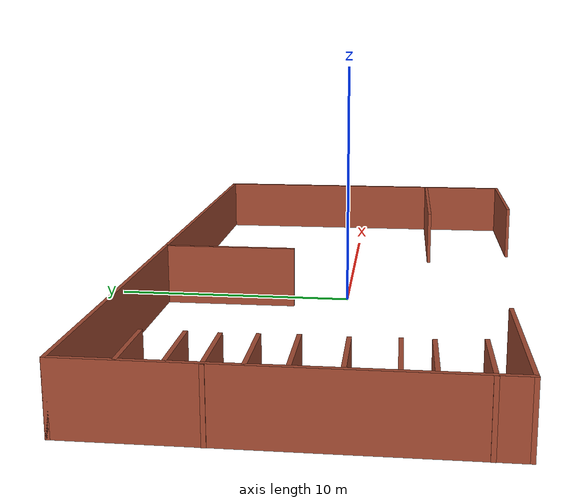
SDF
<?xml version='1.0'?>
<sdf version='1.7'>
  <model name='Untitled'>
    <link name='Wall_17'>
      <pose>-13.7985 0.875 0 0 -0 1.5708</pose>
      <self_collide>0</self_collide>
      <enable_wind>0</enable_wind>
      <kinematic>0</kinematic>
      <visual name='Wall_17_Visual'>
        <pose>0 0 1.25 0 -0 0</pose>
        <geometry>
          <box>
            <size>13.75 0.15 2.5</size>
          </box>
        </geometry>
        <material>
          <script>
            <uri>file://media/materials/scripts/gazebo.material</uri>
            <name>Gazebo/Bricks</name>
          </script>
          <ambient>1 1 1 1</ambient>
          <shader type='pixel'/>
        </material>
        <meta>
          <layer>0</layer>
        </meta>
        <transparency>0</transparency>
        <cast_shadows>1</cast_shadows>
      </visual>
      <collision name='Wall_17_Collision'>
        <laser_retro>0</laser_retro>
        <max_contacts>10</max_contacts>
        <pose>0 0 1.25 0 -0 0</pose>
        <geometry>
          <box>
            <size>13.75 0.15 2.5</size>
          </box>
        </geometry>
        <surface>
          <friction>
            <ode>
              <mu>1</mu>
              <mu2>1</mu2>
              <fdir1>0 0 0</fdir1>
              <slip1>0</slip1>
              <slip2>0</slip2>
            </ode>
            <torsional>
              <coefficient>1</coefficient>
              <patch_radius>0</patch_radius>
              <surface_radius>0</surface_radius>
              <use_patch_radius>1</use_patch_radius>
              <ode>
                <slip>0</slip>
              </ode>
            </torsional>
          </friction>
          <bounce>
            <restitution_coefficient>0</restitution_coefficient>
            <threshold>1e+06</threshold>
          </bounce>
          <contact>
            <collide_without_contact>0</collide_without_contact>
            <collide_without_contact_bitmask>1</collide_without_contact_bitmask>
            <collide_bitmask>1</collide_bitmask>
            <ode>
              <soft_cfm>0</soft_cfm>
              <soft_erp>0.2</soft_erp>
              <kp>1e+13</kp>
              <kd>1</kd>
              <max_vel>0.01</max_vel>
              <min_depth>0</min_depth>
            </ode>
            <bullet>
              <split_impulse>1</split_impulse>
              <split_impulse_penetration_threshold>-0.01</split_impulse_penetration_threshold>
              <soft_cfm>0</soft_cfm>
              <soft_erp>0.2</soft_erp>
              <kp>1e+13</kp>
              <kd>1</kd>
            </bullet>
          </contact>
        </surface>
      </collision>
    </link>
    <link name='Wall_18'>
      <pose>0.001474 7.675 0 0 -0 0</pose>
      <self_collide>0</self_collide>
      <enable_wind>0</enable_wind>
      <kinematic>0</kinematic>
      <visual name='Wall_18_Visual'>
        <pose>0 0 1.25 0 -0 0</pose>
        <geometry>
          <box>
            <size>27.75 0.15 2.5</size>
          </box>
        </geometry>
        <material>
          <script>
            <uri>file://media/materials/scripts/gazebo.material</uri>
            <name>Gazebo/Bricks</name>
          </script>
          <ambient>1 1 1 1</ambient>
          <shader type='pixel'/>
        </material>
        <meta>
          <layer>0</layer>
        </meta>
        <transparency>0</transparency>
        <cast_shadows>1</cast_shadows>
      </visual>
      <collision name='Wall_18_Collision'>
        <laser_retro>0</laser_retro>
        <max_contacts>10</max_contacts>
        <pose>0 0 1.25 0 -0 0</pose>
        <geometry>
          <box>
            <size>27.75 0.15 2.5</size>
          </box>
        </geometry>
        <surface>
          <friction>
            <ode>
              <mu>1</mu>
              <mu2>1</mu2>
              <fdir1>0 0 0</fdir1>
              <slip1>0</slip1>
              <slip2>0</slip2>
            </ode>
            <torsional>
              <coefficient>1</coefficient>
              <patch_radius>0</patch_radius>
              <surface_radius>0</surface_radius>
              <use_patch_radius>1</use_patch_radius>
              <ode>
                <slip>0</slip>
              </ode>
            </torsional>
          </friction>
          <bounce>
            <restitution_coefficient>0</restitution_coefficient>
            <threshold>1e+06</threshold>
          </bounce>
          <contact>
            <collide_without_contact>0</collide_without_contact>
            <collide_without_contact_bitmask>1</collide_without_contact_bitmask>
            <collide_bitmask>1</collide_bitmask>
            <ode>
              <soft_cfm>0</soft_cfm>
              <soft_erp>0.2</soft_erp>
              <kp>1e+13</kp>
              <kd>1</kd>
              <max_vel>0.01</max_vel>
              <min_depth>0</min_depth>
            </ode>
            <bullet>
              <split_impulse>1</split_impulse>
              <split_impulse_penetration_threshold>-0.01</split_impulse_penetration_threshold>
              <soft_cfm>0</soft_cfm>
              <soft_erp>0.2</soft_erp>
              <kp>1e+13</kp>
              <kd>1</kd>
            </bullet>
          </contact>
        </surface>
      </collision>
    </link>
    <link name='Wall_19'>
      <pose>13.8015 0 0 0 0 -1.5708</pose>
      <self_collide>0</self_collide>
      <enable_wind>0</enable_wind>
      <kinematic>0</kinematic>
      <visual name='Wall_19_Visual'>
        <pose>0 0 1.25 0 -0 0</pose>
        <geometry>
          <box>
            <size>15.5 0.15 2.5</size>
          </box>
        </geometry>
        <material>
          <script>
            <uri>file://media/materials/scripts/gazebo.material</uri>
            <name>Gazebo/Bricks</name>
          </script>
          <ambient>1 1 1 1</ambient>
          <shader type='pixel'/>
        </material>
        <meta>
          <layer>0</layer>
        </meta>
        <transparency>0</transparency>
        <cast_shadows>1</cast_shadows>
      </visual>
      <collision name='Wall_19_Collision'>
        <laser_retro>0</laser_retro>
        <max_contacts>10</max_contacts>
        <pose>0 0 1.25 0 -0 0</pose>
        <geometry>
          <box>
            <size>15.5 0.15 2.5</size>
          </box>
        </geometry>
        <surface>
          <friction>
            <ode>
              <mu>1</mu>
              <mu2>1</mu2>
              <fdir1>0 0 0</fdir1>
              <slip1>0</slip1>
              <slip2>0</slip2>
            </ode>
            <torsional>
              <coefficient>1</coefficient>
              <patch_radius>0</patch_radius>
              <surface_radius>0</surface_radius>
              <use_patch_radius>1</use_patch_radius>
              <ode>
                <slip>0</slip>
              </ode>
            </torsional>
          </friction>
          <bounce>
            <restitution_coefficient>0</restitution_coefficient>
            <threshold>1e+06</threshold>
          </bounce>
          <contact>
            <collide_without_contact>0</collide_without_contact>
            <collide_without_contact_bitmask>1</collide_without_contact_bitmask>
            <collide_bitmask>1</collide_bitmask>
            <ode>
              <soft_cfm>0</soft_cfm>
              <soft_erp>0.2</soft_erp>
              <kp>1e+13</kp>
              <kd>1</kd>
              <max_vel>0.01</max_vel>
              <min_depth>0</min_depth>
            </ode>
            <bullet>
              <split_impulse>1</split_impulse>
              <split_impulse_penetration_threshold>-0.01</split_impulse_penetration_threshold>
              <soft_cfm>0</soft_cfm>
              <soft_erp>0.2</soft_erp>
              <kp>1e+13</kp>
              <kd>1</kd>
            </bullet>
          </contact>
        </surface>
      </collision>
    </link>
    <link name='Wall_20'>
      <pose>10.8765 -7.675 0 0 -0 3.14159</pose>
      <self_collide>0</self_collide>
      <enable_wind>0</enable_wind>
      <kinematic>0</kinematic>
      <visual name='Wall_20_Visual'>
        <pose>0 0 1.25 0 -0 0</pose>
        <geometry>
          <box>
            <size>6 0.15 2.5</size>
          </box>
        </geometry>
        <material>
          <script>
            <uri>file://media/materials/scripts/gazebo.material</uri>
            <name>Gazebo/Bricks</name>
          </script>
          <ambient>1 1 1 1</ambient>
          <shader type='pixel'/>
        </material>
        <meta>
          <layer>0</layer>
        </meta>
        <transparency>0</transparency>
        <cast_shadows>1</cast_shadows>
      </visual>
      <collision name='Wall_20_Collision'>
        <laser_retro>0</laser_retro>
        <max_contacts>10</max_contacts>
        <pose>0 0 1.25 0 -0 0</pose>
        <geometry>
          <box>
            <size>6 0.15 2.5</size>
          </box>
        </geometry>
        <surface>
          <friction>
            <ode>
              <mu>1</mu>
              <mu2>1</mu2>
              <fdir1>0 0 0</fdir1>
              <slip1>0</slip1>
              <slip2>0</slip2>
            </ode>
            <torsional>
              <coefficient>1</coefficient>
              <patch_radius>0</patch_radius>
              <surface_radius>0</surface_radius>
              <use_patch_radius>1</use_patch_radius>
              <ode>
                <slip>0</slip>
              </ode>
            </torsional>
          </friction>
          <bounce>
            <restitution_coefficient>0</restitution_coefficient>
            <threshold>1e+06</threshold>
          </bounce>
          <contact>
            <collide_without_contact>0</collide_without_contact>
            <collide_without_contact_bitmask>1</collide_without_contact_bitmask>
            <collide_bitmask>1</collide_bitmask>
            <ode>
              <soft_cfm>0</soft_cfm>
              <soft_erp>0.2</soft_erp>
              <kp>1e+13</kp>
              <kd>1</kd>
              <max_vel>0.01</max_vel>
              <min_depth>0</min_depth>
            </ode>
            <bullet>
              <split_impulse>1</split_impulse>
              <split_impulse_penetration_threshold>-0.01</split_impulse_penetration_threshold>
              <soft_cfm>0</soft_cfm>
              <soft_erp>0.2</soft_erp>
              <kp>1e+13</kp>
              <kd>1</kd>
            </bullet>
          </contact>
        </surface>
      </collision>
    </link>
    <link name='Wall_21'>
      <pose>-10.9985 -5.925 0 0 -0 0</pose>
      <self_collide>0</self_collide>
      <enable_wind>0</enable_wind>
      <kinematic>0</kinematic>
      <visual name='Wall_21_Visual'>
        <pose>0 0 1.25 0 -0 0</pose>
        <geometry>
          <box>
            <size>5.75 0.15 2.5</size>
          </box>
        </geometry>
        <material>
          <script>
            <uri>file://media/materials/scripts/gazebo.material</uri>
            <name>Gazebo/Bricks</name>
          </script>
          <ambient>1 1 1 1</ambient>
          <shader type='pixel'/>
        </material>
        <meta>
          <layer>0</layer>
        </meta>
        <transparency>0</transparency>
        <cast_shadows>1</cast_shadows>
      </visual>
      <collision name='Wall_21_Collision'>
        <laser_retro>0</laser_retro>
        <max_contacts>10</max_contacts>
        <pose>0 0 1.25 0 -0 0</pose>
        <geometry>
          <box>
            <size>5.75 0.15 2.5</size>
          </box>
        </geometry>
        <surface>
          <friction>
            <ode>
              <mu>1</mu>
              <mu2>1</mu2>
              <fdir1>0 0 0</fdir1>
              <slip1>0</slip1>
              <slip2>0</slip2>
            </ode>
            <torsional>
              <coefficient>1</coefficient>
              <patch_radius>0</patch_radius>
              <surface_radius>0</surface_radius>
              <use_patch_radius>1</use_patch_radius>
              <ode>
                <slip>0</slip>
              </ode>
            </torsional>
          </friction>
          <bounce>
            <restitution_coefficient>0</restitution_coefficient>
            <threshold>1e+06</threshold>
          </bounce>
          <contact>
            <collide_without_contact>0</collide_without_contact>
            <collide_without_contact_bitmask>1</collide_without_contact_bitmask>
            <collide_bitmask>1</collide_bitmask>
            <ode>
              <soft_cfm>0</soft_cfm>
              <soft_erp>0.2</soft_erp>
              <kp>1e+13</kp>
              <kd>1</kd>
              <max_vel>0.01</max_vel>
              <min_depth>0</min_depth>
            </ode>
            <bullet>
              <split_impulse>1</split_impulse>
              <split_impulse_penetration_threshold>-0.01</split_impulse_penetration_threshold>
              <soft_cfm>0</soft_cfm>
              <soft_erp>0.2</soft_erp>
              <kp>1e+13</kp>
              <kd>1</kd>
            </bullet>
          </contact>
        </surface>
      </collision>
    </link>
    <link name='Wall_23'>
      <pose>-12.6229 5.63002 0 0 -0 0</pose>
      <self_collide>0</self_collide>
      <enable_wind>0</enable_wind>
      <kinematic>0</kinematic>
      <visual name='Wall_23_Visual'>
        <pose>0 0 1.25 0 -0 0</pose>
        <geometry>
          <box>
            <size>2.5 0.15 2.5</size>
          </box>
        </geometry>
        <material>
          <script>
            <uri>file://media/materials/scripts/gazebo.material</uri>
            <name>Gazebo/Bricks</name>
          </script>
          <ambient>1 1 1 1</ambient>
          <shader type='pixel'/>
        </material>
        <meta>
          <layer>0</layer>
        </meta>
        <transparency>0</transparency>
        <cast_shadows>1</cast_shadows>
      </visual>
      <collision name='Wall_23_Collision'>
        <laser_retro>0</laser_retro>
        <max_contacts>10</max_contacts>
        <pose>0 0 1.25 0 -0 0</pose>
        <geometry>
          <box>
            <size>2.5 0.15 2.5</size>
          </box>
        </geometry>
        <surface>
          <friction>
            <ode>
              <mu>1</mu>
              <mu2>1</mu2>
              <fdir1>0 0 0</fdir1>
              <slip1>0</slip1>
              <slip2>0</slip2>
            </ode>
            <torsional>
              <coefficient>1</coefficient>
              <patch_radius>0</patch_radius>
              <surface_radius>0</surface_radius>
              <use_patch_radius>1</use_patch_radius>
              <ode>
                <slip>0</slip>
              </ode>
            </torsional>
          </friction>
          <bounce>
            <restitution_coefficient>0</restitution_coefficient>
            <threshold>1e+06</threshold>
          </bounce>
          <contact>
            <collide_without_contact>0</collide_without_contact>
            <collide_without_contact_bitmask>1</collide_without_contact_bitmask>
            <collide_bitmask>1</collide_bitmask>
            <ode>
              <soft_cfm>0</soft_cfm>
              <soft_erp>0.2</soft_erp>
              <kp>1e+13</kp>
              <kd>1</kd>
              <max_vel>0.01</max_vel>
              <min_depth>0</min_depth>
            </ode>
            <bullet>
              <split_impulse>1</split_impulse>
              <split_impulse_penetration_threshold>-0.01</split_impulse_penetration_threshold>
              <soft_cfm>0</soft_cfm>
              <soft_erp>0.2</soft_erp>
              <kp>1e+13</kp>
              <kd>1</kd>
            </bullet>
          </contact>
        </surface>
      </collision>
    </link>
    <link name='Wall_25'>
      <pose>-12.603 4.22075 0 0 -0 0</pose>
      <self_collide>0</self_collide>
      <enable_wind>0</enable_wind>
      <kinematic>0</kinematic>
      <visual name='Wall_25_Visual'>
        <pose>0 0 1.25 0 -0 0</pose>
        <geometry>
          <box>
            <size>2.5 0.15 2.5</size>
          </box>
        </geometry>
        <material>
          <script>
            <uri>file://media/materials/scripts/gazebo.material</uri>
            <name>Gazebo/Bricks</name>
          </script>
          <ambient>1 1 1 1</ambient>
          <shader type='pixel'/>
        </material>
        <meta>
          <layer>0</layer>
        </meta>
        <transparency>0</transparency>
        <cast_shadows>1</cast_shadows>
      </visual>
      <collision name='Wall_25_Collision'>
        <laser_retro>0</laser_retro>
        <max_contacts>10</max_contacts>
        <pose>0 0 1.25 0 -0 0</pose>
        <geometry>
          <box>
            <size>2.5 0.15 2.5</size>
          </box>
        </geometry>
        <surface>
          <friction>
            <ode>
              <mu>1</mu>
              <mu2>1</mu2>
              <fdir1>0 0 0</fdir1>
              <slip1>0</slip1>
              <slip2>0</slip2>
            </ode>
            <torsional>
              <coefficient>1</coefficient>
              <patch_radius>0</patch_radius>
              <surface_radius>0</surface_radius>
              <use_patch_radius>1</use_patch_radius>
              <ode>
                <slip>0</slip>
              </ode>
            </torsional>
          </friction>
          <bounce>
            <restitution_coefficient>0</restitution_coefficient>
            <threshold>1e+06</threshold>
          </bounce>
          <contact>
            <collide_without_contact>0</collide_without_contact>
            <collide_without_contact_bitmask>1</collide_without_contact_bitmask>
            <collide_bitmask>1</collide_bitmask>
            <ode>
              <soft_cfm>0</soft_cfm>
              <soft_erp>0.2</soft_erp>
              <kp>1e+13</kp>
              <kd>1</kd>
              <max_vel>0.01</max_vel>
              <min_depth>0</min_depth>
            </ode>
            <bullet>
              <split_impulse>1</split_impulse>
              <split_impulse_penetration_threshold>-0.01</split_impulse_penetration_threshold>
              <soft_cfm>0</soft_cfm>
              <soft_erp>0.2</soft_erp>
              <kp>1e+13</kp>
              <kd>1</kd>
            </bullet>
          </contact>
        </surface>
      </collision>
    </link>
    <link name='Wall_27'>
      <pose>-12.603 1.95799 0 0 -0 0</pose>
      <self_collide>0</self_collide>
      <enable_wind>0</enable_wind>
      <kinematic>0</kinematic>
      <visual name='Wall_27_Visual'>
        <pose>0 0 1.25 0 -0 0</pose>
        <geometry>
          <box>
            <size>2.5 0.15 2.5</size>
          </box>
        </geometry>
        <material>
          <script>
            <uri>file://media/materials/scripts/gazebo.material</uri>
            <name>Gazebo/Bricks</name>
          </script>
          <ambient>1 1 1 1</ambient>
          <shader type='pixel'/>
        </material>
        <meta>
          <layer>0</layer>
        </meta>
        <transparency>0</transparency>
        <cast_shadows>1</cast_shadows>
      </visual>
      <collision name='Wall_27_Collision'>
        <laser_retro>0</laser_retro>
        <max_contacts>10</max_contacts>
        <pose>0 0 1.25 0 -0 0</pose>
        <geometry>
          <box>
            <size>2.5 0.15 2.5</size>
          </box>
        </geometry>
        <surface>
          <friction>
            <ode>
              <mu>1</mu>
              <mu2>1</mu2>
              <fdir1>0 0 0</fdir1>
              <slip1>0</slip1>
              <slip2>0</slip2>
            </ode>
            <torsional>
              <coefficient>1</coefficient>
              <patch_radius>0</patch_radius>
              <surface_radius>0</surface_radius>
              <use_patch_radius>1</use_patch_radius>
              <ode>
                <slip>0</slip>
              </ode>
            </torsional>
          </friction>
          <bounce>
            <restitution_coefficient>0</restitution_coefficient>
            <threshold>1e+06</threshold>
          </bounce>
          <contact>
            <collide_without_contact>0</collide_without_contact>
            <collide_without_contact_bitmask>1</collide_without_contact_bitmask>
            <collide_bitmask>1</collide_bitmask>
            <ode>
              <soft_cfm>0</soft_cfm>
              <soft_erp>0.2</soft_erp>
              <kp>1e+13</kp>
              <kd>1</kd>
              <max_vel>0.01</max_vel>
              <min_depth>0</min_depth>
            </ode>
            <bullet>
              <split_impulse>1</split_impulse>
              <split_impulse_penetration_threshold>-0.01</split_impulse_penetration_threshold>
              <soft_cfm>0</soft_cfm>
              <soft_erp>0.2</soft_erp>
              <kp>1e+13</kp>
              <kd>1</kd>
            </bullet>
          </contact>
        </surface>
      </collision>
    </link>
    <link name='Wall_29'>
      <pose>-12.6427 3.12907 0 0 -0 0</pose>
      <self_collide>0</self_collide>
      <enable_wind>0</enable_wind>
      <kinematic>0</kinematic>
      <visual name='Wall_29_Visual'>
        <pose>0 0 1.25 0 -0 0</pose>
        <geometry>
          <box>
            <size>2.5 0.15 2.5</size>
          </box>
        </geometry>
        <material>
          <script>
            <uri>file://media/materials/scripts/gazebo.material</uri>
            <name>Gazebo/Bricks</name>
          </script>
          <ambient>1 1 1 1</ambient>
          <shader type='pixel'/>
        </material>
        <meta>
          <layer>0</layer>
        </meta>
        <transparency>0</transparency>
        <cast_shadows>1</cast_shadows>
      </visual>
      <collision name='Wall_29_Collision'>
        <laser_retro>0</laser_retro>
        <max_contacts>10</max_contacts>
        <pose>0 0 1.25 0 -0 0</pose>
        <geometry>
          <box>
            <size>2.5 0.15 2.5</size>
          </box>
        </geometry>
        <surface>
          <friction>
            <ode>
              <mu>1</mu>
              <mu2>1</mu2>
              <fdir1>0 0 0</fdir1>
              <slip1>0</slip1>
              <slip2>0</slip2>
            </ode>
            <torsional>
              <coefficient>1</coefficient>
              <patch_radius>0</patch_radius>
              <surface_radius>0</surface_radius>
              <use_patch_radius>1</use_patch_radius>
              <ode>
                <slip>0</slip>
              </ode>
            </torsional>
          </friction>
          <bounce>
            <restitution_coefficient>0</restitution_coefficient>
            <threshold>1e+06</threshold>
          </bounce>
          <contact>
            <collide_without_contact>0</collide_without_contact>
            <collide_without_contact_bitmask>1</collide_without_contact_bitmask>
            <collide_bitmask>1</collide_bitmask>
            <ode>
              <soft_cfm>0</soft_cfm>
              <soft_erp>0.2</soft_erp>
              <kp>1e+13</kp>
              <kd>1</kd>
              <max_vel>0.01</max_vel>
              <min_depth>0</min_depth>
            </ode>
            <bullet>
              <split_impulse>1</split_impulse>
              <split_impulse_penetration_threshold>-0.01</split_impulse_penetration_threshold>
              <soft_cfm>0</soft_cfm>
              <soft_erp>0.2</soft_erp>
              <kp>1e+13</kp>
              <kd>1</kd>
            </bullet>
          </contact>
        </surface>
      </collision>
    </link>
    <link name='Wall_31'>
      <pose>-12.603 -0.781138 0 0 -0 0</pose>
      <self_collide>0</self_collide>
      <enable_wind>0</enable_wind>
      <kinematic>0</kinematic>
      <visual name='Wall_31_Visual'>
        <pose>0 0 1.25 0 -0 0</pose>
        <geometry>
          <box>
            <size>2.5 0.15 2.5</size>
          </box>
        </geometry>
        <material>
          <script>
            <uri>file://media/materials/scripts/gazebo.material</uri>
            <name>Gazebo/Bricks</name>
          </script>
          <ambient>1 1 1 1</ambient>
          <shader type='pixel'/>
        </material>
        <meta>
          <layer>0</layer>
        </meta>
        <transparency>0</transparency>
        <cast_shadows>1</cast_shadows>
      </visual>
      <collision name='Wall_31_Collision'>
        <laser_retro>0</laser_retro>
        <max_contacts>10</max_contacts>
        <pose>0 0 1.25 0 -0 0</pose>
        <geometry>
          <box>
            <size>2.5 0.15 2.5</size>
          </box>
        </geometry>
        <surface>
          <friction>
            <ode>
              <mu>1</mu>
              <mu2>1</mu2>
              <fdir1>0 0 0</fdir1>
              <slip1>0</slip1>
              <slip2>0</slip2>
            </ode>
            <torsional>
              <coefficient>1</coefficient>
              <patch_radius>0</patch_radius>
              <surface_radius>0</surface_radius>
              <use_patch_radius>1</use_patch_radius>
              <ode>
                <slip>0</slip>
              </ode>
            </torsional>
          </friction>
          <bounce>
            <restitution_coefficient>0</restitution_coefficient>
            <threshold>1e+06</threshold>
          </bounce>
          <contact>
            <collide_without_contact>0</collide_without_contact>
            <collide_without_contact_bitmask>1</collide_without_contact_bitmask>
            <collide_bitmask>1</collide_bitmask>
            <ode>
              <soft_cfm>0</soft_cfm>
              <soft_erp>0.2</soft_erp>
              <kp>1e+13</kp>
              <kd>1</kd>
              <max_vel>0.01</max_vel>
              <min_depth>0</min_depth>
            </ode>
            <bullet>
              <split_impulse>1</split_impulse>
              <split_impulse_penetration_threshold>-0.01</split_impulse_penetration_threshold>
              <soft_cfm>0</soft_cfm>
              <soft_erp>0.2</soft_erp>
              <kp>1e+13</kp>
              <kd>1</kd>
            </bullet>
          </contact>
        </surface>
      </collision>
    </link>
    <link name='Wall_33'>
      <pose>-12.5435 0.727368 0 0 -0 0</pose>
      <self_collide>0</self_collide>
      <enable_wind>0</enable_wind>
      <kinematic>0</kinematic>
      <visual name='Wall_33_Visual'>
        <pose>0 0 1.25 0 -0 0</pose>
        <geometry>
          <box>
            <size>2.5 0.15 2.5</size>
          </box>
        </geometry>
        <material>
          <script>
            <uri>file://media/materials/scripts/gazebo.material</uri>
            <name>Gazebo/Bricks</name>
          </script>
          <ambient>1 1 1 1</ambient>
          <shader type='pixel'/>
        </material>
        <meta>
          <layer>0</layer>
        </meta>
        <transparency>0</transparency>
        <cast_shadows>1</cast_shadows>
      </visual>
      <collision name='Wall_33_Collision'>
        <laser_retro>0</laser_retro>
        <max_contacts>10</max_contacts>
        <pose>0 0 1.25 0 -0 0</pose>
        <geometry>
          <box>
            <size>2.5 0.15 2.5</size>
          </box>
        </geometry>
        <surface>
          <friction>
            <ode>
              <mu>1</mu>
              <mu2>1</mu2>
              <fdir1>0 0 0</fdir1>
              <slip1>0</slip1>
              <slip2>0</slip2>
            </ode>
            <torsional>
              <coefficient>1</coefficient>
              <patch_radius>0</patch_radius>
              <surface_radius>0</surface_radius>
              <use_patch_radius>1</use_patch_radius>
              <ode>
                <slip>0</slip>
              </ode>
            </torsional>
          </friction>
          <bounce>
            <restitution_coefficient>0</restitution_coefficient>
            <threshold>1e+06</threshold>
          </bounce>
          <contact>
            <collide_without_contact>0</collide_without_contact>
            <collide_without_contact_bitmask>1</collide_without_contact_bitmask>
            <collide_bitmask>1</collide_bitmask>
            <ode>
              <soft_cfm>0</soft_cfm>
              <soft_erp>0.2</soft_erp>
              <kp>1e+13</kp>
              <kd>1</kd>
              <max_vel>0.01</max_vel>
              <min_depth>0</min_depth>
            </ode>
            <bullet>
              <split_impulse>1</split_impulse>
              <split_impulse_penetration_threshold>-0.01</split_impulse_penetration_threshold>
              <soft_cfm>0</soft_cfm>
              <soft_erp>0.2</soft_erp>
              <kp>1e+13</kp>
              <kd>1</kd>
            </bullet>
          </contact>
        </surface>
      </collision>
    </link>
    <link name='Wall_37'>
      <pose>-12.5236 -2.32934 0 0 -0 0</pose>
      <self_collide>0</self_collide>
      <enable_wind>0</enable_wind>
      <kinematic>0</kinematic>
      <visual name='Wall_37_Visual'>
        <pose>0 0 1.25 0 -0 0</pose>
        <geometry>
          <box>
            <size>2.5 0.15 2.5</size>
          </box>
        </geometry>
        <material>
          <script>
            <uri>file://media/materials/scripts/gazebo.material</uri>
            <name>Gazebo/Bricks</name>
          </script>
          <ambient>1 1 1 1</ambient>
          <shader type='pixel'/>
        </material>
        <meta>
          <layer>0</layer>
        </meta>
        <transparency>0</transparency>
        <cast_shadows>1</cast_shadows>
      </visual>
      <collision name='Wall_37_Collision'>
        <laser_retro>0</laser_retro>
        <max_contacts>10</max_contacts>
        <pose>0 0 1.25 0 -0 0</pose>
        <geometry>
          <box>
            <size>2.5 0.15 2.5</size>
          </box>
        </geometry>
        <surface>
          <friction>
            <ode>
              <mu>1</mu>
              <mu2>1</mu2>
              <fdir1>0 0 0</fdir1>
              <slip1>0</slip1>
              <slip2>0</slip2>
            </ode>
            <torsional>
              <coefficient>1</coefficient>
              <patch_radius>0</patch_radius>
              <surface_radius>0</surface_radius>
              <use_patch_radius>1</use_patch_radius>
              <ode>
                <slip>0</slip>
              </ode>
            </torsional>
          </friction>
          <bounce>
            <restitution_coefficient>0</restitution_coefficient>
            <threshold>1e+06</threshold>
          </bounce>
          <contact>
            <collide_without_contact>0</collide_without_contact>
            <collide_without_contact_bitmask>1</collide_without_contact_bitmask>
            <collide_bitmask>1</collide_bitmask>
            <ode>
              <soft_cfm>0</soft_cfm>
              <soft_erp>0.2</soft_erp>
              <kp>1e+13</kp>
              <kd>1</kd>
              <max_vel>0.01</max_vel>
              <min_depth>0</min_depth>
            </ode>
            <bullet>
              <split_impulse>1</split_impulse>
              <split_impulse_penetration_threshold>-0.01</split_impulse_penetration_threshold>
              <soft_cfm>0</soft_cfm>
              <soft_erp>0.2</soft_erp>
              <kp>1e+13</kp>
              <kd>1</kd>
            </bullet>
          </contact>
        </surface>
      </collision>
    </link>
    <link name='Wall_39'>
      <pose>-12.5633 -3.32178 0 0 -0 0</pose>
      <self_collide>0</self_collide>
      <enable_wind>0</enable_wind>
      <kinematic>0</kinematic>
      <visual name='Wall_39_Visual'>
        <pose>0 0 1.25 0 -0 0</pose>
        <geometry>
          <box>
            <size>2.5 0.15 2.5</size>
          </box>
        </geometry>
        <material>
          <script>
            <uri>file://media/materials/scripts/gazebo.material</uri>
            <name>Gazebo/Bricks</name>
          </script>
          <ambient>1 1 1 1</ambient>
          <shader type='pixel'/>
        </material>
        <meta>
          <layer>0</layer>
        </meta>
        <transparency>0</transparency>
        <cast_shadows>1</cast_shadows>
      </visual>
      <collision name='Wall_39_Collision'>
        <laser_retro>0</laser_retro>
        <max_contacts>10</max_contacts>
        <pose>0 0 1.25 0 -0 0</pose>
        <geometry>
          <box>
            <size>2.5 0.15 2.5</size>
          </box>
        </geometry>
        <surface>
          <friction>
            <ode>
              <mu>1</mu>
              <mu2>1</mu2>
              <fdir1>0 0 0</fdir1>
              <slip1>0</slip1>
              <slip2>0</slip2>
            </ode>
            <torsional>
              <coefficient>1</coefficient>
              <patch_radius>0</patch_radius>
              <surface_radius>0</surface_radius>
              <use_patch_radius>1</use_patch_radius>
              <ode>
                <slip>0</slip>
              </ode>
            </torsional>
          </friction>
          <bounce>
            <restitution_coefficient>0</restitution_coefficient>
            <threshold>1e+06</threshold>
          </bounce>
          <contact>
            <collide_without_contact>0</collide_without_contact>
            <collide_without_contact_bitmask>1</collide_without_contact_bitmask>
            <collide_bitmask>1</collide_bitmask>
            <ode>
              <soft_cfm>0</soft_cfm>
              <soft_erp>0.2</soft_erp>
              <kp>1e+13</kp>
              <kd>1</kd>
              <max_vel>0.01</max_vel>
              <min_depth>0</min_depth>
            </ode>
            <bullet>
              <split_impulse>1</split_impulse>
              <split_impulse_penetration_threshold>-0.01</split_impulse_penetration_threshold>
              <soft_cfm>0</soft_cfm>
              <soft_erp>0.2</soft_erp>
              <kp>1e+13</kp>
              <kd>1</kd>
            </bullet>
          </contact>
        </surface>
      </collision>
    </link>
    <link name='Wall_41'>
      <pose>-12.5177 -4.86998 0 0 -0 0</pose>
      <self_collide>0</self_collide>
      <enable_wind>0</enable_wind>
      <kinematic>0</kinematic>
      <visual name='Wall_41_Visual'>
        <pose>0 0 1.25 0 -0 0</pose>
        <geometry>
          <box>
            <size>2.75 0.15 2.5</size>
          </box>
        </geometry>
        <material>
          <script>
            <uri>file://media/materials/scripts/gazebo.material</uri>
            <name>Gazebo/Bricks</name>
          </script>
          <ambient>1 1 1 1</ambient>
          <shader type='pixel'/>
        </material>
        <meta>
          <layer>0</layer>
        </meta>
        <transparency>0</transparency>
        <cast_shadows>1</cast_shadows>
      </visual>
      <collision name='Wall_41_Collision'>
        <laser_retro>0</laser_retro>
        <max_contacts>10</max_contacts>
        <pose>0 0 1.25 0 -0 0</pose>
        <geometry>
          <box>
            <size>2.75 0.15 2.5</size>
          </box>
        </geometry>
        <surface>
          <friction>
            <ode>
              <mu>1</mu>
              <mu2>1</mu2>
              <fdir1>0 0 0</fdir1>
              <slip1>0</slip1>
              <slip2>0</slip2>
            </ode>
            <torsional>
              <coefficient>1</coefficient>
              <patch_radius>0</patch_radius>
              <surface_radius>0</surface_radius>
              <use_patch_radius>1</use_patch_radius>
              <ode>
                <slip>0</slip>
              </ode>
            </torsional>
          </friction>
          <bounce>
            <restitution_coefficient>0</restitution_coefficient>
            <threshold>1e+06</threshold>
          </bounce>
          <contact>
            <collide_without_contact>0</collide_without_contact>
            <collide_without_contact_bitmask>1</collide_without_contact_bitmask>
            <collide_bitmask>1</collide_bitmask>
            <ode>
              <soft_cfm>0</soft_cfm>
              <soft_erp>0.2</soft_erp>
              <kp>1e+13</kp>
              <kd>1</kd>
              <max_vel>0.01</max_vel>
              <min_depth>0</min_depth>
            </ode>
            <bullet>
              <split_impulse>1</split_impulse>
              <split_impulse_penetration_threshold>-0.01</split_impulse_penetration_threshold>
              <soft_cfm>0</soft_cfm>
              <soft_erp>0.2</soft_erp>
              <kp>1e+13</kp>
              <kd>1</kd>
            </bullet>
          </contact>
        </surface>
      </collision>
    </link>
    <link name='Wall_44'>
      <pose>-1.11451 4.93989 0 0 0 -1.5708</pose>
      <self_collide>0</self_collide>
      <enable_wind>0</enable_wind>
      <kinematic>0</kinematic>
      <visual name='Wall_44_Visual'>
        <pose>0 0 1.25 0 -0 0</pose>
        <geometry>
          <box>
            <size>5.5 0.15 2.5</size>
          </box>
        </geometry>
        <material>
          <script>
            <uri>file://media/materials/scripts/gazebo.material</uri>
            <name>Gazebo/Bricks</name>
          </script>
          <ambient>1 1 1 1</ambient>
          <shader type='pixel'/>
        </material>
        <meta>
          <layer>0</layer>
        </meta>
        <transparency>0</transparency>
        <cast_shadows>1</cast_shadows>
      </visual>
      <collision name='Wall_44_Collision'>
        <laser_retro>0</laser_retro>
        <max_contacts>10</max_contacts>
        <pose>0 0 1.25 0 -0 0</pose>
        <geometry>
          <box>
            <size>5.5 0.15 2.5</size>
          </box>
        </geometry>
        <surface>
          <friction>
            <ode>
              <mu>1</mu>
              <mu2>1</mu2>
              <fdir1>0 0 0</fdir1>
              <slip1>0</slip1>
              <slip2>0</slip2>
            </ode>
            <torsional>
              <coefficient>1</coefficient>
              <patch_radius>0</patch_radius>
              <surface_radius>0</surface_radius>
              <use_patch_radius>1</use_patch_radius>
              <ode>
                <slip>0</slip>
              </ode>
            </torsional>
          </friction>
          <bounce>
            <restitution_coefficient>0</restitution_coefficient>
            <threshold>1e+06</threshold>
          </bounce>
          <contact>
            <collide_without_contact>0</collide_without_contact>
            <collide_without_contact_bitmask>1</collide_without_contact_bitmask>
            <collide_bitmask>1</collide_bitmask>
            <ode>
              <soft_cfm>0</soft_cfm>
              <soft_erp>0.2</soft_erp>
              <kp>1e+13</kp>
              <kd>1</kd>
              <max_vel>0.01</max_vel>
              <min_depth>0</min_depth>
            </ode>
            <bullet>
              <split_impulse>1</split_impulse>
              <split_impulse_penetration_threshold>-0.01</split_impulse_penetration_threshold>
              <soft_cfm>0</soft_cfm>
              <soft_erp>0.2</soft_erp>
              <kp>1e+13</kp>
              <kd>1</kd>
            </bullet>
          </contact>
        </surface>
      </collision>
    </link>
    <link name='Wall_46'>
      <pose>10.1427 -3.65921 0 0 -0 0</pose>
      <self_collide>0</self_collide>
      <enable_wind>0</enable_wind>
      <kinematic>0</kinematic>
      <visual name='Wall_46_Visual'>
        <pose>0 0 1.25 0 -0 0</pose>
        <geometry>
          <box>
            <size>7.5 0.15 2.5</size>
          </box>
        </geometry>
        <material>
          <script>
            <uri>file://media/materials/scripts/gazebo.material</uri>
            <name>Gazebo/Bricks</name>
          </script>
          <ambient>1 1 1 1</ambient>
          <shader type='pixel'/>
        </material>
        <meta>
          <layer>0</layer>
        </meta>
        <transparency>0</transparency>
        <cast_shadows>1</cast_shadows>
      </visual>
      <collision name='Wall_46_Collision'>
        <laser_retro>0</laser_retro>
        <max_contacts>10</max_contacts>
        <pose>0 0 1.25 0 -0 0</pose>
        <geometry>
          <box>
            <size>7.5 0.15 2.5</size>
          </box>
        </geometry>
        <surface>
          <friction>
            <ode>
              <mu>1</mu>
              <mu2>1</mu2>
              <fdir1>0 0 0</fdir1>
              <slip1>0</slip1>
              <slip2>0</slip2>
            </ode>
            <torsional>
              <coefficient>1</coefficient>
              <patch_radius>0</patch_radius>
              <surface_radius>0</surface_radius>
              <use_patch_radius>1</use_patch_radius>
              <ode>
                <slip>0</slip>
              </ode>
            </torsional>
          </friction>
          <bounce>
            <restitution_coefficient>0</restitution_coefficient>
            <threshold>1e+06</threshold>
          </bounce>
          <contact>
            <collide_without_contact>0</collide_without_contact>
            <collide_without_contact_bitmask>1</collide_without_contact_bitmask>
            <collide_bitmask>1</collide_bitmask>
            <ode>
              <soft_cfm>0</soft_cfm>
              <soft_erp>0.2</soft_erp>
              <kp>1e+13</kp>
              <kd>1</kd>
              <max_vel>0.01</max_vel>
              <min_depth>0</min_depth>
            </ode>
            <bullet>
              <split_impulse>1</split_impulse>
              <split_impulse_penetration_threshold>-0.01</split_impulse_penetration_threshold>
              <soft_cfm>0</soft_cfm>
              <soft_erp>0.2</soft_erp>
              <kp>1e+13</kp>
              <kd>1</kd>
            </bullet>
          </contact>
        </surface>
      </collision>
    </link>
    <static>1</static>
    <allow_auto_disable>1</allow_auto_disable>
  </model>
</sdf>
